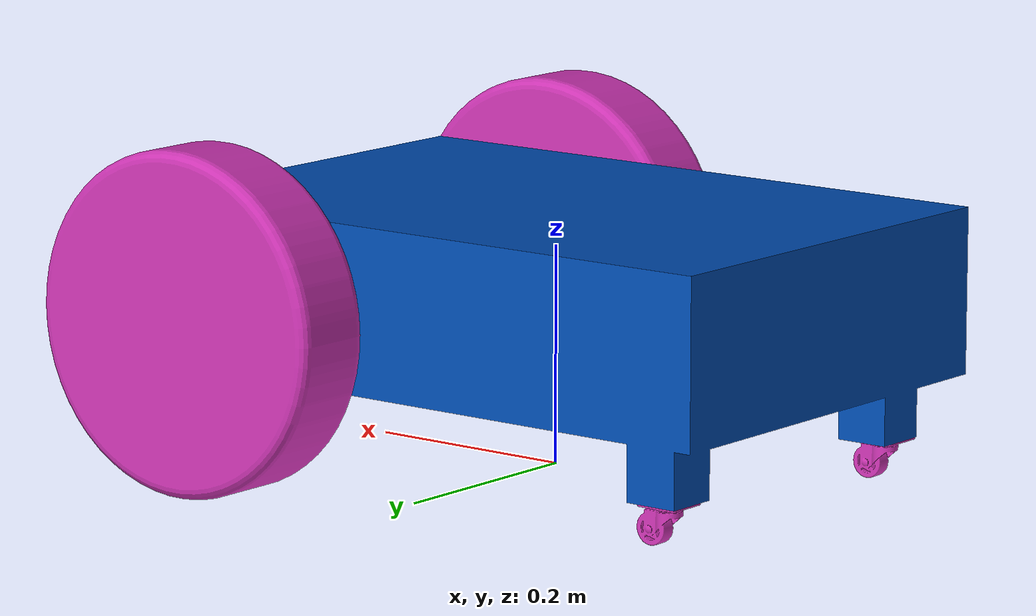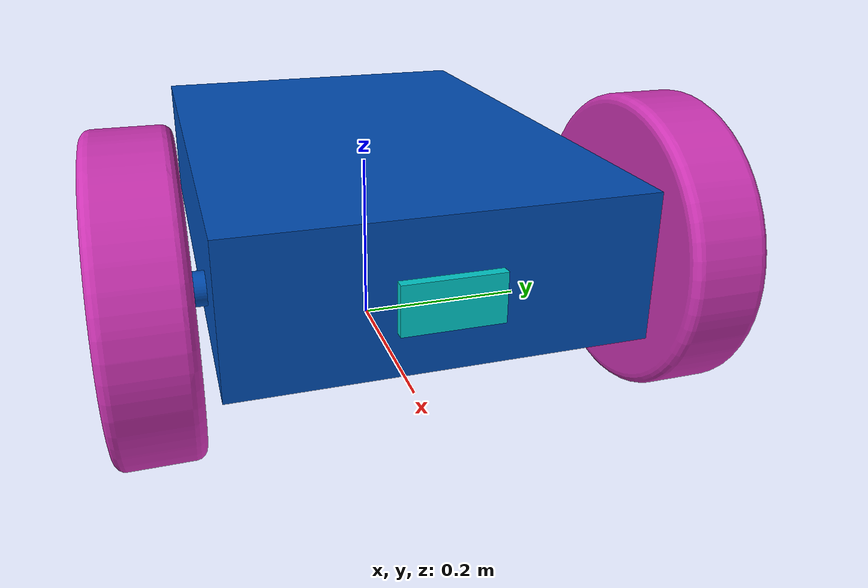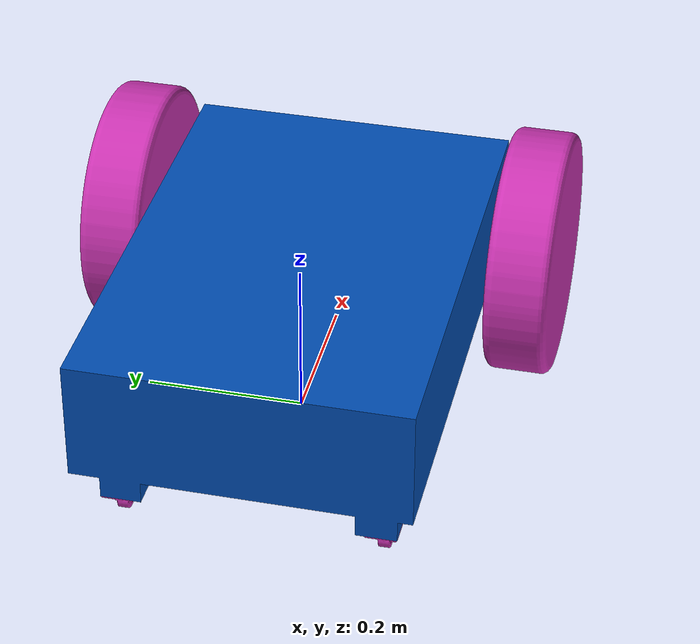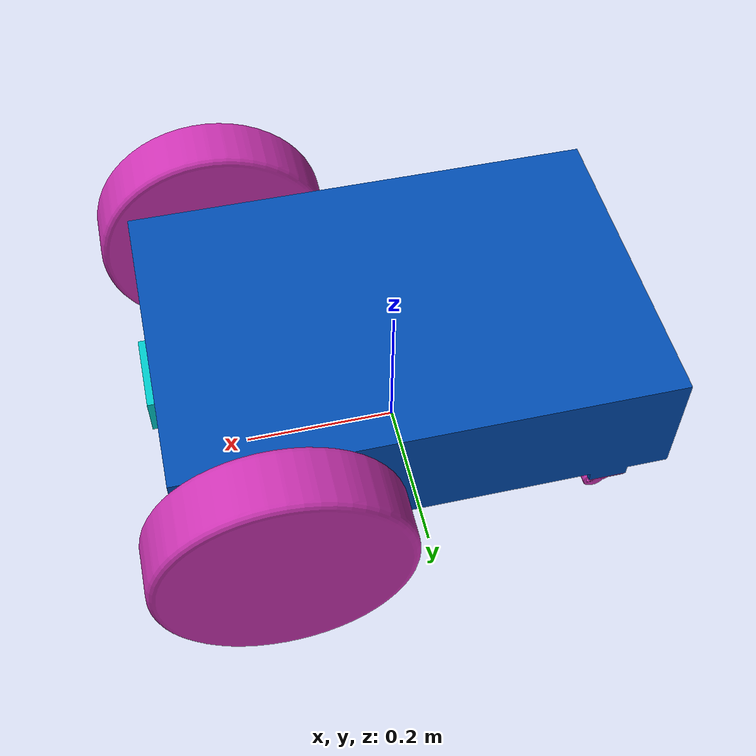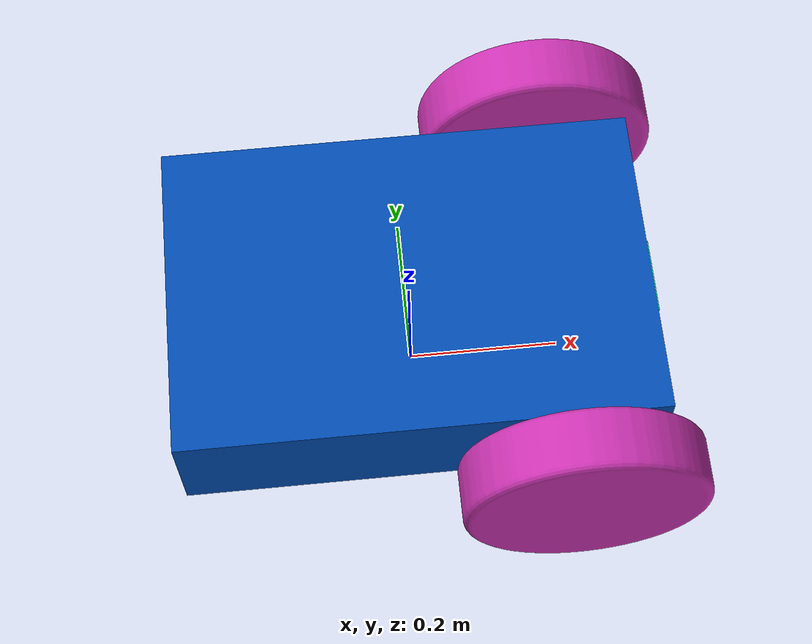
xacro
<?xml version="1.0" encoding="utf-8"?>
<robot name="sabby_robby" xmlns:xacro="http://www.ros.org/wiki/xacro" >

  <xacro:include filename="sabby_robby_gazebo.xacro"/>
  <xacro:include filename="camera.xacro"/>

  <material name="blue">
    <color rgba="0 0.3 0.7 1" />
  </material>

  <material name="bluered">
    <color rgba="0.8 0.2 0.7 1" />
  </material>

  <material name="greenblue">
    <color rgba="0 0.8 0.8 1" />
  </material>

  <link name="base_link">
    <inertial>
      <origin xyz="-0.0393804438397903 -4.9960036108132E-16 -1" rpy="0 0 0" />
      <mass value="4.15509198061297" />
      <inertia ixx="0.104793677550994" ixy="4.34625011283321E-16" ixz="-0.0160644282903705" iyy="0.18635846427725" iyz="-7.22920717246174E-17" izz="0.249707323070578" />
    </inertial>
    <visual>
      <origin xyz="0 0 0" rpy="0 0 0" />
      <geometry>
        <mesh filename="file://$(find sabby_robby)/meshes/base_link.STL" />
      </geometry>
      <material name="blue">

      </material>
    </visual>
    <collision>
      <origin xyz="0 0 0" rpy="0 0 0" />
      <geometry>
        <mesh filename="file://$(find sabby_robby)/meshes/base_link.STL" />
      </geometry>
    </collision>
  </link>

  <link name="base_footprint">

    </link>

    <joint name="base_joint" type="fixed">
        <parent link="base_footprint" />
        <child link="base_link" />
        <origin xyz="0 0 0.24" rpy="0 0 0" />
    </joint>

  <link name="link_FL">
    <inertial>
      <origin xyz="1.66533453693773E-16 -0.0399260258882922 0" rpy="0 0 0" />
      <mass value="5.98332477085146" />
      <inertia ixx="0.038931465954269" ixy="-1.14525968916749E-16" ixz="7.60561910381101E-37" iyy="0.0715693202976591" iyz="5.96532188894504E-35" izz="0.038931465954269" />
    </inertial>
    <visual>
      <origin xyz="0 0 0" rpy="0 0 0" />
      <geometry>
        <mesh filename="file://$(find sabby_robby)/meshes/link_FL.STL" />
      </geometry>
      <material name="bluered">

      </material>
    </visual>
    <collision>
      <origin xyz="0 0 0" rpy="0 0 0" />
      <geometry>
        <mesh filename="file://$(find sabby_robby)/meshes/link_FL.STL" />
      </geometry>
    </collision>
  </link>

  <joint name="joint_FL" type="continuous">
    <origin xyz="0.193 0.3 -0.0915" rpy="0 0 0" />
    <parent link="base_link" />
    <child link="link_FL" />
    <axis xyz="0 1 0" />
    <dynamics damping="0.7" />
  </joint>

  <link name="link_BL">
    <inertial>
      <origin xyz="-0.0104554020005766 2.73395611782301E-05 0.0142270479543802" rpy="0 0 0" />
      <mass value="0.0501520796182236" />
      <inertia ixx="4.63540269637638E-06" ixy="-3.51568213438317E-10" ixz="2.48064446383539E-07" iyy="5.07357918819359E-06" iyz="1.15130721361476E-10" izz="7.75969429784855E-06" />
    </inertial>
    <visual>
      <origin xyz="0 0 0" rpy="0 0 0" />
      <geometry>
        <mesh filename="file://$(find sabby_robby)/meshes/link_BL.STL" />
      </geometry>
      <material name="bluered">

      </material>
    </visual>
    <collision>
      <origin xyz="0 0 0" rpy="0 0 0" />
      <geometry>
        <mesh filename="file://$(find sabby_robby)/meshes/link_BL.STL" />
      </geometry>
    </collision>
  </link>

  <joint name="joint_BL" type="fixed">
    <origin xyz="-0.23299 0.16014 -0.23256" rpy="0 0 0.0094354" />
    <parent link="base_link" />
    <child link="link_BL" />
    <axis xyz="0 0 0" />
  </joint>

  <link name="link_FR">
    <inertial>
      <origin xyz="5.55111512312578E-17 0.0399260258882923 0" rpy="0 0 0" />
      <mass value="5.98332477085147" />
      <inertia ixx="0.0389314659542691" ixy="-9.32104990390014E-19" ixz="4.01934945428023E-18" iyy="0.0715693202976591" iyz="-3.54031090859653E-18" izz="0.0389314659542691" />
    </inertial>
    <visual>
      <origin xyz="0 0 0" rpy="0 0 0" />
      <geometry>
        <mesh filename="file://$(find sabby_robby)/meshes/link_FR.STL" />
      </geometry>
      <material name="bluered">

      </material>
    </visual>
    <collision>
      <origin xyz="0 0 0" rpy="0 0 0" />
      <geometry>
        <mesh filename="file://$(find sabby_robby)/meshes/link_FR.STL" />
      </geometry>
    </collision>
  </link>

  <joint name="joint_FR" type="continuous">
    <origin xyz="0.193 -0.3 -0.0915" rpy="0 0 0" />
    <parent link="base_link" />
    <child link="link_FR" />
    <axis xyz="0 1 0" />
    <dynamics damping="0.7" />
  </joint>

  <link name="link_BR">
    <inertial>
      <origin xyz="-0.0104551945572823 -7.13106909289163E-05 0.01422704795438" rpy="0 0 0" />
      <mass value="0.0501520796182244" />
      <inertia ixx="4.63544833829345E-06" ixy="-4.48561390456279E-09" ixz="2.48052318082788E-07" iyy="5.07353354627666E-06" iyz="2.45566862776434E-09" izz="7.75969429784863E-06" />
    </inertial>
    <visual>
      <origin xyz="0 0 0" rpy="0 0 0" />
      <geometry>
        <mesh filename="file://$(find sabby_robby)/meshes/link_BR.STL" />
      </geometry>
      <material name="bluered">

      </material>
    </visual>
    <collision>
      <origin xyz="0 0 0" rpy="0 0 0" />
      <geometry>
        <mesh filename="file://$(find sabby_robby)/meshes/link_BR.STL" />
      </geometry>
    </collision>
  </link>

   <joint name="joint_BR" type="fixed">
    <origin xyz="-0.23299 -0.15986 -0.23256" rpy="0 0 0" />
    <parent link="base_link" />
    <child link="link_BR" />
    <axis xyz="0 0 0" />
  </joint>

</robot>

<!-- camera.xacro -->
<robot xmlns:xacro="http://www.ros.org/wiki/xacro">

    <xacro:property name="camera_length" value="0.01" />
    <xacro:property name="camera_width" value="0.1" />
    <xacro:property name="camera_height" value="0.05" />

    <xacro:macro name="box_inertia" params="m x y z o_xyz o_rpy">
        <inertial>
            <mass value="${m}" />
            <origin xyz="${o_xyz}" rpy="${o_rpy}" />
            <inertia ixx="${(m/12) * (y*y + z*z)}" ixy="0" ixz="0"
                     iyy="${(m/12) * (x*x + z*z)}" iyz="0"
                     izz="${(m/12) * (x*x + y*y)}" />
        </inertial>
    </xacro:macro>

    <link name="camera_link">
        <visual>
            <geometry>
                <box size="${camera_length} ${camera_width} ${camera_height}" />
            </geometry>
            <material name="greenblue" />
        </visual>
        <collision>
            <geometry>
                <box size="${camera_length} ${camera_width} ${camera_height}" />
            </geometry>
        </collision>
        <xacro:box_inertia m="0.1" x="${camera_length}" y="${camera_width}" z="${camera_height}"
                           o_xyz="0 0 0" o_rpy="0 0 0" />
    </link>

    <joint name="base_camera_joint" type="fixed" >
        <parent link="base_link" />
        <child link="camera_link" />
        <origin xyz="0.31 0 -0.08" rpy="0 0 0" />
    </joint>

    <link name="camera_link_optical" />

    <joint name="camera_optical_joint" type="fixed">
        <origin xyz="0 0 0" rpy="${-pi/2} 0 ${-pi/2}"/>
        <parent link="camera_link"/>
        <child link="camera_link_optical"/>
    </joint>

    <gazebo reference="camera_link">
        <sensor name="camera" type="camera">
            <camera>
                <horizontal_fov>1.3962634</horizontal_fov>
                <image>
                    <width>640</width>
                    <height>480</height>
                    <format>R8G8B8</format>
                </image>
                <clip>
                    <near>0.1</near>
                    <far>15</far>
                </clip>
                <noise>
                    <type>gaussian</type>
                    <mean>0.0</mean>
                    <stddev>0.007</stddev>
                </noise>
                <optical_frame_id>camera_link_optical</optical_frame_id>
                <camera_info_topic>camera/camera_info</camera_info_topic>
            </camera>
            <always_on>1</always_on>
            <update_rate>20</update_rate>
            <visualize>true</visualize>
            <topic>camera/image_raw</topic>
        </sensor>
    </gazebo>

</robot>
